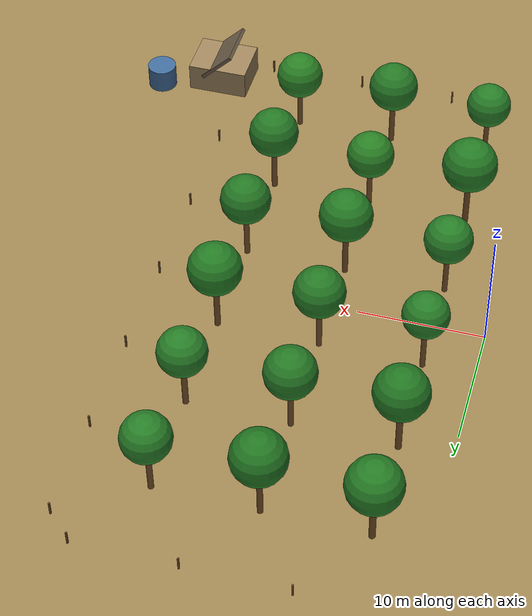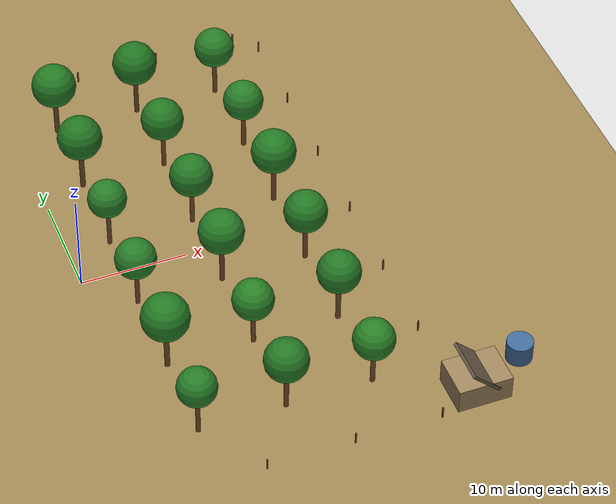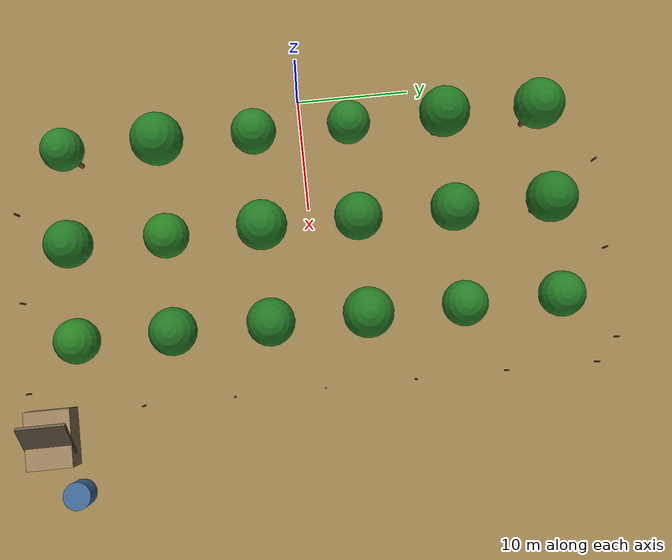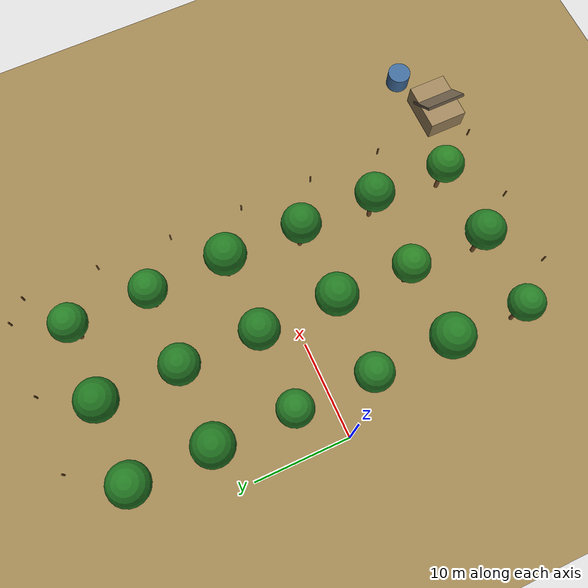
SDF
<sdf version="1.8">
 <world name="farm_world">
  <model name="ground_plane">
   <static>true</static>
   <link name="link">
    <collision name="collision">
     <geometry><plane><normal>0 0 1</normal><size>100 100</size></plane></geometry>
     <surface><friction><ode><mu>0.8</mu><mu2>0.8</mu2></ode></friction></surface>
    </collision>
    <visual name="visual">
     <geometry><plane><normal>0 0 1</normal><size>100 100</size></plane></geometry>
     <material>
      <ambient>0.55 0.45 0.28 1</ambient>
      <diffuse>0.62 0.52 0.32 1</diffuse>
      <specular>0.05 0.05 0.03 1</specular>
     </material>
    </visual>
   </link>
  </model>
  <model name="palm_r0_c3">
   <static>true</static>
   <pose>4 -20 0 0 0 0</pose>
   <link name="link">
    <collision name="tc">
     <pose>0 0 2.3 0 0 0</pose>
     <geometry><cylinder><radius>0.21</radius><length>4.6</length></cylinder></geometry>
    </collision>
    <visual name="tv">
     <pose>0 0 2.3 0 0 0</pose>
     <geometry><cylinder><radius>0.21</radius><length>4.6</length></cylinder></geometry>
     <material><ambient>0.40 0.26 0.12 1</ambient><diffuse>0.48 0.32 0.16 1</diffuse></material>
    </visual>
    <visual name="cv">
     <pose>0 0 5.6 0 0 0</pose>
     <geometry><sphere><radius>1.8</radius></sphere></geometry>
     <material><ambient>0.11 0.39 0.11 1</ambient><diffuse>0.15 0.49 0.15 1</diffuse></material>
    </visual>
   </link>
  </model>
  <model name="palm_r0_c4">
   <static>true</static>
   <pose>12 -20 0 0 0 0</pose>
   <link name="link">
    <collision name="tc">
     <pose>0 0 2.4 0 0 0</pose>
     <geometry><cylinder><radius>0.23</radius><length>4.8</length></cylinder></geometry>
    </collision>
    <visual name="tv">
     <pose>0 0 2.4 0 0 0</pose>
     <geometry><cylinder><radius>0.23</radius><length>4.8</length></cylinder></geometry>
     <material><ambient>0.40 0.26 0.12 1</ambient><diffuse>0.48 0.32 0.16 1</diffuse></material>
    </visual>
    <visual name="cv">
     <pose>0 0 5.8 0 0 0</pose>
     <geometry><sphere><radius>2.0</radius></sphere></geometry>
     <material><ambient>0.10 0.37 0.10 1</ambient><diffuse>0.14 0.47 0.14 1</diffuse></material>
    </visual>
   </link>
  </model>
  <model name="palm_r0_c5">
   <static>true</static>
   <pose>20 -20 0 0 0 0</pose>
   <link name="link">
    <collision name="tc">
     <pose>0 0 2.2 0 0 0</pose>
     <geometry><cylinder><radius>0.22</radius><length>4.4</length></cylinder></geometry>
    </collision>
    <visual name="tv">
     <pose>0 0 2.2 0 0 0</pose>
     <geometry><cylinder><radius>0.22</radius><length>4.4</length></cylinder></geometry>
     <material><ambient>0.40 0.26 0.12 1</ambient><diffuse>0.48 0.32 0.16 1</diffuse></material>
    </visual>
    <visual name="cv">
     <pose>0 0 5.3 0 0 0</pose>
     <geometry><sphere><radius>1.9</radius></sphere></geometry>
     <material><ambient>0.12 0.40 0.10 1</ambient><diffuse>0.16 0.50 0.14 1</diffuse></material>
    </visual>
   </link>
  </model>
  <model name="palm_r1_c3">
   <static>true</static>
   <pose>4 -12 0 0 0 0</pose>
   <link name="link">
    <collision name="tc">
     <pose>0 0 2.5 0 0 0</pose>
     <geometry><cylinder><radius>0.24</radius><length>5.0</length></cylinder></geometry>
    </collision>
    <visual name="tv">
     <pose>0 0 2.5 0 0 0</pose>
     <geometry><cylinder><radius>0.24</radius><length>5.0</length></cylinder></geometry>
     <material><ambient>0.38 0.25 0.11 1</ambient><diffuse>0.46 0.31 0.15 1</diffuse></material>
    </visual>
    <visual name="cv">
     <pose>0 0 6.1 0 0 0</pose>
     <geometry><sphere><radius>2.2</radius></sphere></geometry>
     <material><ambient>0.10 0.38 0.10 1</ambient><diffuse>0.14 0.48 0.14 1</diffuse></material>
    </visual>
   </link>
  </model>
  <model name="palm_r1_c4">
   <static>true</static>
   <pose>12 -12 0 0 0 0</pose>
   <link name="link">
    <collision name="tc">
     <pose>0 0 2.2 0 0 0</pose>
     <geometry><cylinder><radius>0.22</radius><length>4.4</length></cylinder></geometry>
    </collision>
    <visual name="tv">
     <pose>0 0 2.2 0 0 0</pose>
     <geometry><cylinder><radius>0.22</radius><length>4.4</length></cylinder></geometry>
     <material><ambient>0.40 0.26 0.12 1</ambient><diffuse>0.48 0.32 0.16 1</diffuse></material>
    </visual>
    <visual name="cv">
     <pose>0 0 5.3 0 0 0</pose>
     <geometry><sphere><radius>1.9</radius></sphere></geometry>
     <material><ambient>0.12 0.40 0.10 1</ambient><diffuse>0.16 0.50 0.14 1</diffuse></material>
    </visual>
   </link>
  </model>
  <model name="palm_r1_c5">
   <static>true</static>
   <pose>20 -12 0 0 0 0</pose>
   <link name="link">
    <collision name="tc">
     <pose>0 0 2.4 0 0 0</pose>
     <geometry><cylinder><radius>0.23</radius><length>4.8</length></cylinder></geometry>
    </collision>
    <visual name="tv">
     <pose>0 0 2.4 0 0 0</pose>
     <geometry><cylinder><radius>0.23</radius><length>4.8</length></cylinder></geometry>
     <material><ambient>0.40 0.26 0.12 1</ambient><diffuse>0.48 0.32 0.16 1</diffuse></material>
    </visual>
    <visual name="cv">
     <pose>0 0 5.8 0 0 0</pose>
     <geometry><sphere><radius>2.0</radius></sphere></geometry>
     <material><ambient>0.10 0.37 0.10 1</ambient><diffuse>0.14 0.47 0.14 1</diffuse></material>
    </visual>
   </link>
  </model>
  <model name="palm_r2_c3">
   <static>true</static>
   <pose>4 -4 0 0 0 0</pose>
   <link name="link">
    <collision name="tc">
     <pose>0 0 2.3 0 0 0</pose>
     <geometry><cylinder><radius>0.21</radius><length>4.6</length></cylinder></geometry>
    </collision>
    <visual name="tv">
     <pose>0 0 2.3 0 0 0</pose>
     <geometry><cylinder><radius>0.21</radius><length>4.6</length></cylinder></geometry>
     <material><ambient>0.40 0.26 0.12 1</ambient><diffuse>0.48 0.32 0.16 1</diffuse></material>
    </visual>
    <visual name="cv">
     <pose>0 0 5.6 0 0 0</pose>
     <geometry><sphere><radius>1.9</radius></sphere></geometry>
     <material><ambient>0.11 0.39 0.11 1</ambient><diffuse>0.15 0.49 0.15 1</diffuse></material>
    </visual>
   </link>
  </model>
  <model name="palm_r2_c4">
   <static>true</static>
   <pose>12 -4 0 0 0 0</pose>
   <link name="link">
    <collision name="tc">
     <pose>0 0 2.5 0 0 0</pose>
     <geometry><cylinder><radius>0.23</radius><length>5.0</length></cylinder></geometry>
    </collision>
    <visual name="tv">
     <pose>0 0 2.5 0 0 0</pose>
     <geometry><cylinder><radius>0.23</radius><length>5.0</length></cylinder></geometry>
     <material><ambient>0.38 0.25 0.11 1</ambient><diffuse>0.46 0.31 0.15 1</diffuse></material>
    </visual>
    <visual name="cv">
     <pose>0 0 6.1 0 0 0</pose>
     <geometry><sphere><radius>2.1</radius></sphere></geometry>
     <material><ambient>0.10 0.38 0.10 1</ambient><diffuse>0.14 0.48 0.14 1</diffuse></material>
    </visual>
   </link>
  </model>
  <model name="palm_r2_c5">
   <static>true</static>
   <pose>20 -4 0 0 0 0</pose>
   <link name="link">
    <collision name="tc">
     <pose>0 0 2.4 0 0 0</pose>
     <geometry><cylinder><radius>0.22</radius><length>4.8</length></cylinder></geometry>
    </collision>
    <visual name="tv">
     <pose>0 0 2.4 0 0 0</pose>
     <geometry><cylinder><radius>0.22</radius><length>4.8</length></cylinder></geometry>
     <material><ambient>0.40 0.26 0.12 1</ambient><diffuse>0.48 0.32 0.16 1</diffuse></material>
    </visual>
    <visual name="cv">
     <pose>0 0 5.8 0 0 0</pose>
     <geometry><sphere><radius>2.0</radius></sphere></geometry>
     <material><ambient>0.10 0.37 0.10 1</ambient><diffuse>0.14 0.47 0.14 1</diffuse></material>
    </visual>
   </link>
  </model>
  <model name="palm_r3_c3">
   <static>true</static>
   <pose>4 4 0 0 0 0</pose>
   <link name="link">
    <collision name="tc">
     <pose>0 0 2.3 0 0 0</pose>
     <geometry><cylinder><radius>0.21</radius><length>4.6</length></cylinder></geometry>
    </collision>
    <visual name="tv">
     <pose>0 0 2.3 0 0 0</pose>
     <geometry><cylinder><radius>0.21</radius><length>4.6</length></cylinder></geometry>
     <material><ambient>0.40 0.26 0.12 1</ambient><diffuse>0.48 0.32 0.16 1</diffuse></material>
    </visual>
    <visual name="cv">
     <pose>0 0 5.6 0 0 0</pose>
     <geometry><sphere><radius>1.8</radius></sphere></geometry>
     <material><ambient>0.11 0.39 0.11 1</ambient><diffuse>0.15 0.49 0.15 1</diffuse></material>
    </visual>
   </link>
  </model>
  <model name="palm_r3_c4">
   <static>true</static>
   <pose>12 4 0 0 0 0</pose>
   <link name="link">
    <collision name="tc">
     <pose>0 0 2.4 0 0 0</pose>
     <geometry><cylinder><radius>0.22</radius><length>4.8</length></cylinder></geometry>
    </collision>
    <visual name="tv">
     <pose>0 0 2.4 0 0 0</pose>
     <geometry><cylinder><radius>0.22</radius><length>4.8</length></cylinder></geometry>
     <material><ambient>0.40 0.26 0.12 1</ambient><diffuse>0.48 0.32 0.16 1</diffuse></material>
    </visual>
    <visual name="cv">
     <pose>0 0 5.8 0 0 0</pose>
     <geometry><sphere><radius>2.0</radius></sphere></geometry>
     <material><ambient>0.10 0.37 0.10 1</ambient><diffuse>0.14 0.47 0.14 1</diffuse></material>
    </visual>
   </link>
  </model>
  <model name="palm_r3_c5">
   <static>true</static>
   <pose>20 4 0 0 0 0</pose>
   <link name="link">
    <collision name="tc">
     <pose>0 0 2.5 0 0 0</pose>
     <geometry><cylinder><radius>0.23</radius><length>5.0</length></cylinder></geometry>
    </collision>
    <visual name="tv">
     <pose>0 0 2.5 0 0 0</pose>
     <geometry><cylinder><radius>0.23</radius><length>5.0</length></cylinder></geometry>
     <material><ambient>0.38 0.25 0.11 1</ambient><diffuse>0.46 0.31 0.15 1</diffuse></material>
    </visual>
    <visual name="cv">
     <pose>0 0 6.1 0 0 0</pose>
     <geometry><sphere><radius>2.1</radius></sphere></geometry>
     <material><ambient>0.10 0.38 0.10 1</ambient><diffuse>0.14 0.48 0.14 1</diffuse></material>
    </visual>
   </link>
  </model>
  <model name="palm_r4_c3">
   <static>true</static>
   <pose>4 12 0 0 0 0</pose>
   <link name="link">
    <collision name="tc">
     <pose>0 0 2.5 0 0 0</pose>
     <geometry><cylinder><radius>0.24</radius><length>5.0</length></cylinder></geometry>
    </collision>
    <visual name="tv">
     <pose>0 0 2.5 0 0 0</pose>
     <geometry><cylinder><radius>0.24</radius><length>5.0</length></cylinder></geometry>
     <material><ambient>0.38 0.25 0.11 1</ambient><diffuse>0.46 0.31 0.15 1</diffuse></material>
    </visual>
    <visual name="cv">
     <pose>0 0 6.1 0 0 0</pose>
     <geometry><sphere><radius>2.1</radius></sphere></geometry>
     <material><ambient>0.10 0.36 0.10 1</ambient><diffuse>0.13 0.46 0.13 1</diffuse></material>
    </visual>
   </link>
  </model>
  <model name="palm_r4_c4">
   <static>true</static>
   <pose>12 12 0 0 0 0</pose>
   <link name="link">
    <collision name="tc">
     <pose>0 0 2.4 0 0 0</pose>
     <geometry><cylinder><radius>0.21</radius><length>4.8</length></cylinder></geometry>
    </collision>
    <visual name="tv">
     <pose>0 0 2.4 0 0 0</pose>
     <geometry><cylinder><radius>0.21</radius><length>4.8</length></cylinder></geometry>
     <material><ambient>0.40 0.26 0.12 1</ambient><diffuse>0.48 0.32 0.16 1</diffuse></material>
    </visual>
    <visual name="cv">
     <pose>0 0 5.8 0 0 0</pose>
     <geometry><sphere><radius>2.0</radius></sphere></geometry>
     <material><ambient>0.10 0.37 0.10 1</ambient><diffuse>0.14 0.47 0.14 1</diffuse></material>
    </visual>
   </link>
  </model>
  <model name="palm_r4_c5">
   <static>true</static>
   <pose>20 12 0 0 0 0</pose>
   <link name="link">
    <collision name="tc">
     <pose>0 0 2.3 0 0 0</pose>
     <geometry><cylinder><radius>0.23</radius><length>4.6</length></cylinder></geometry>
    </collision>
    <visual name="tv">
     <pose>0 0 2.3 0 0 0</pose>
     <geometry><cylinder><radius>0.23</radius><length>4.6</length></cylinder></geometry>
     <material><ambient>0.40 0.26 0.12 1</ambient><diffuse>0.48 0.32 0.16 1</diffuse></material>
    </visual>
    <visual name="cv">
     <pose>0 0 5.6 0 0 0</pose>
     <geometry><sphere><radius>1.9</radius></sphere></geometry>
     <material><ambient>0.11 0.39 0.11 1</ambient><diffuse>0.15 0.49 0.15 1</diffuse></material>
    </visual>
   </link>
  </model>
  <model name="palm_r5_c3">
   <static>true</static>
   <pose>4 20 0 0 0 0</pose>
   <link name="link">
    <collision name="tc">
     <pose>0 0 2.4 0 0 0</pose>
     <geometry><cylinder><radius>0.24</radius><length>4.8</length></cylinder></geometry>
    </collision>
    <visual name="tv">
     <pose>0 0 2.4 0 0 0</pose>
     <geometry><cylinder><radius>0.24</radius><length>4.8</length></cylinder></geometry>
     <material><ambient>0.38 0.25 0.11 1</ambient><diffuse>0.46 0.31 0.15 1</diffuse></material>
    </visual>
    <visual name="cv">
     <pose>0 0 5.8 0 0 0</pose>
     <geometry><sphere><radius>2.1</radius></sphere></geometry>
     <material><ambient>0.10 0.38 0.10 1</ambient><diffuse>0.14 0.48 0.14 1</diffuse></material>
    </visual>
   </link>
  </model>
  <model name="palm_r5_c4">
   <static>true</static>
   <pose>12 20 0 0 0 0</pose>
   <link name="link">
    <collision name="tc">
     <pose>0 0 2.5 0 0 0</pose>
     <geometry><cylinder><radius>0.22</radius><length>5.0</length></cylinder></geometry>
    </collision>
    <visual name="tv">
     <pose>0 0 2.5 0 0 0</pose>
     <geometry><cylinder><radius>0.22</radius><length>5.0</length></cylinder></geometry>
     <material><ambient>0.38 0.25 0.11 1</ambient><diffuse>0.46 0.31 0.15 1</diffuse></material>
    </visual>
    <visual name="cv">
     <pose>0 0 6.1 0 0 0</pose>
     <geometry><sphere><radius>2.1</radius></sphere></geometry>
     <material><ambient>0.10 0.36 0.10 1</ambient><diffuse>0.13 0.46 0.13 1</diffuse></material>
    </visual>
   </link>
  </model>
  <model name="palm_r5_c5">
   <static>true</static>
   <pose>20 20 0 0 0 0</pose>
   <link name="link">
    <collision name="tc">
     <pose>0 0 2.3 0 0 0</pose>
     <geometry><cylinder><radius>0.22</radius><length>4.6</length></cylinder></geometry>
    </collision>
    <visual name="tv">
     <pose>0 0 2.3 0 0 0</pose>
     <geometry><cylinder><radius>0.22</radius><length>4.6</length></cylinder></geometry>
     <material><ambient>0.40 0.26 0.12 1</ambient><diffuse>0.48 0.32 0.16 1</diffuse></material>
    </visual>
    <visual name="cv">
     <pose>0 0 5.6 0 0 0</pose>
     <geometry><sphere><radius>1.9</radius></sphere></geometry>
     <material><ambient>0.11 0.39 0.11 1</ambient><diffuse>0.15 0.49 0.15 1</diffuse></material>
    </visual>
   </link>
  </model>
  <model name="shed_body">
   <static>true</static>
   <pose>28 -24 1.2 0 0 0</pose>
   <link name="link">
    <collision name="col"><geometry><box><size>5.0 4.0 2.4</size></box></geometry></collision>
    <visual name="vis">
     <geometry><box><size>5.0 4.0 2.4</size></box></geometry>
     <material>
      <ambient>0.55 0.45 0.30 1</ambient>
      <diffuse>0.62 0.52 0.36 1</diffuse>
      <specular>0.1 0.1 0.08 1</specular>
     </material>
    </visual>
   </link>
  </model>
  <model name="shed_roof">
   <static>true</static>
   <pose>28 -24 2.8 0 0.785 0</pose>
   <link name="link">
    <collision name="col"><geometry><box><size>3.6 4.2 0.3</size></box></geometry></collision>
    <visual name="vis">
     <geometry><box><size>3.6 4.2 0.3</size></box></geometry>
     <material>
      <ambient>0.35 0.30 0.25 1</ambient>
      <diffuse>0.42 0.36 0.28 1</diffuse>
      <specular>0.15 0.15 0.10 1</specular>
     </material>
    </visual>
   </link>
  </model>
  <model name="water_tank">
   <static>true</static>
   <pose>33 -22 1.0 0 0 0</pose>
   <link name="link">
    <collision name="col">
     <geometry><cylinder><radius>1.2</radius><length>2.0</length></cylinder></geometry>
    </collision>
    <visual name="vis">
     <geometry><cylinder><radius>1.2</radius><length>2.0</length></cylinder></geometry>
     <material>
      <ambient>0.20 0.35 0.50 1</ambient>
      <diffuse>0.25 0.42 0.60 1</diffuse>
      <specular>0.30 0.30 0.30 1</specular>
     </material>
    </visual>
   </link>
  </model>
  <model name="fence_n_4">
   <static>true</static>
   <pose>8   26 0.6 0 0 0</pose>
   <link name="link">
    <collision name="c"><geometry><box><size>0.12 0.12 1.2</size></box></geometry></collision>
    <visual name="v">
     <geometry><box><size>0.12 0.12 1.2</size></box></geometry>
     <material><ambient>0.45 0.30 0.15 1</ambient><diffuse>0.52 0.36 0.18 1</diffuse></material>
    </visual>
   </link>
  </model>
  <model name="fence_n_5">
   <static>true</static>
   <pose>16  26 0.6 0 0 0</pose>
   <link name="link">
    <collision name="c"><geometry><box><size>0.12 0.12 1.2</size></box></geometry></collision>
    <visual name="v">
     <geometry><box><size>0.12 0.12 1.2</size></box></geometry>
     <material><ambient>0.45 0.30 0.15 1</ambient><diffuse>0.52 0.36 0.18 1</diffuse></material>
    </visual>
   </link>
  </model>
  <model name="fence_n_6">
   <static>true</static>
   <pose>24  26 0.6 0 0 0</pose>
   <link name="link">
    <collision name="c"><geometry><box><size>0.12 0.12 1.2</size></box></geometry></collision>
    <visual name="v">
     <geometry><box><size>0.12 0.12 1.2</size></box></geometry>
     <material><ambient>0.45 0.30 0.15 1</ambient><diffuse>0.52 0.36 0.18 1</diffuse></material>
    </visual>
   </link>
  </model>
  <model name="fence_s_4">
   <static>true</static>
   <pose>8   -26 0.6 0 0 0</pose>
   <link name="link">
    <collision name="c"><geometry><box><size>0.12 0.12 1.2</size></box></geometry></collision>
    <visual name="v">
     <geometry><box><size>0.12 0.12 1.2</size></box></geometry>
     <material><ambient>0.45 0.30 0.15 1</ambient><diffuse>0.52 0.36 0.18 1</diffuse></material>
    </visual>
   </link>
  </model>
  <model name="fence_s_5">
   <static>true</static>
   <pose>16  -26 0.6 0 0 0</pose>
   <link name="link">
    <collision name="c"><geometry><box><size>0.12 0.12 1.2</size></box></geometry></collision>
    <visual name="v">
     <geometry><box><size>0.12 0.12 1.2</size></box></geometry>
     <material><ambient>0.45 0.30 0.15 1</ambient><diffuse>0.52 0.36 0.18 1</diffuse></material>
    </visual>
   </link>
  </model>
  <model name="fence_s_6">
   <static>true</static>
   <pose>24  -26 0.6 0 0 0</pose>
   <link name="link">
    <collision name="c"><geometry><box><size>0.12 0.12 1.2</size></box></geometry></collision>
    <visual name="v">
     <geometry><box><size>0.12 0.12 1.2</size></box></geometry>
     <material><ambient>0.45 0.30 0.15 1</ambient><diffuse>0.52 0.36 0.18 1</diffuse></material>
    </visual>
   </link>
  </model>
  <model name="fence_e_0">
   <static>true</static>
   <pose>26 -24 0.6 0 0 0</pose>
   <link name="link">
    <collision name="c"><geometry><box><size>0.12 0.12 1.2</size></box></geometry></collision>
    <visual name="v">
     <geometry><box><size>0.12 0.12 1.2</size></box></geometry>
     <material><ambient>0.45 0.30 0.15 1</ambient><diffuse>0.52 0.36 0.18 1</diffuse></material>
    </visual>
   </link>
  </model>
  <model name="fence_e_1">
   <static>true</static>
   <pose>26 -16 0.6 0 0 0</pose>
   <link name="link">
    <collision name="c"><geometry><box><size>0.12 0.12 1.2</size></box></geometry></collision>
    <visual name="v">
     <geometry><box><size>0.12 0.12 1.2</size></box></geometry>
     <material><ambient>0.45 0.30 0.15 1</ambient><diffuse>0.52 0.36 0.18 1</diffuse></material>
    </visual>
   </link>
  </model>
  <model name="fence_e_2">
   <static>true</static>
   <pose>26 -8  0.6 0 0 0</pose>
   <link name="link">
    <collision name="c"><geometry><box><size>0.12 0.12 1.2</size></box></geometry></collision>
    <visual name="v">
     <geometry><box><size>0.12 0.12 1.2</size></box></geometry>
     <material><ambient>0.45 0.30 0.15 1</ambient><diffuse>0.52 0.36 0.18 1</diffuse></material>
    </visual>
   </link>
  </model>
  <model name="fence_e_3">
   <static>true</static>
   <pose>26 0   0.6 0 0 0</pose>
   <link name="link">
    <collision name="c"><geometry><box><size>0.12 0.12 1.2</size></box></geometry></collision>
    <visual name="v">
     <geometry><box><size>0.12 0.12 1.2</size></box></geometry>
     <material><ambient>0.45 0.30 0.15 1</ambient><diffuse>0.52 0.36 0.18 1</diffuse></material>
    </visual>
   </link>
  </model>
  <model name="fence_e_4">
   <static>true</static>
   <pose>26 8   0.6 0 0 0</pose>
   <link name="link">
    <collision name="c"><geometry><box><size>0.12 0.12 1.2</size></box></geometry></collision>
    <visual name="v">
     <geometry><box><size>0.12 0.12 1.2</size></box></geometry>
     <material><ambient>0.45 0.30 0.15 1</ambient><diffuse>0.52 0.36 0.18 1</diffuse></material>
    </visual>
   </link>
  </model>
  <model name="fence_e_5">
   <static>true</static>
   <pose>26 16  0.6 0 0 0</pose>
   <link name="link">
    <collision name="c"><geometry><box><size>0.12 0.12 1.2</size></box></geometry></collision>
    <visual name="v">
     <geometry><box><size>0.12 0.12 1.2</size></box></geometry>
     <material><ambient>0.45 0.30 0.15 1</ambient><diffuse>0.52 0.36 0.18 1</diffuse></material>
    </visual>
   </link>
  </model>
  <model name="fence_e_6">
   <static>true</static>
   <pose>26 24  0.6 0 0 0</pose>
   <link name="link">
    <collision name="c"><geometry><box><size>0.12 0.12 1.2</size></box></geometry></collision>
    <visual name="v">
     <geometry><box><size>0.12 0.12 1.2</size></box></geometry>
     <material><ambient>0.45 0.30 0.15 1</ambient><diffuse>0.52 0.36 0.18 1</diffuse></material>
    </visual>
   </link>
  </model>
 </world>
</sdf>
